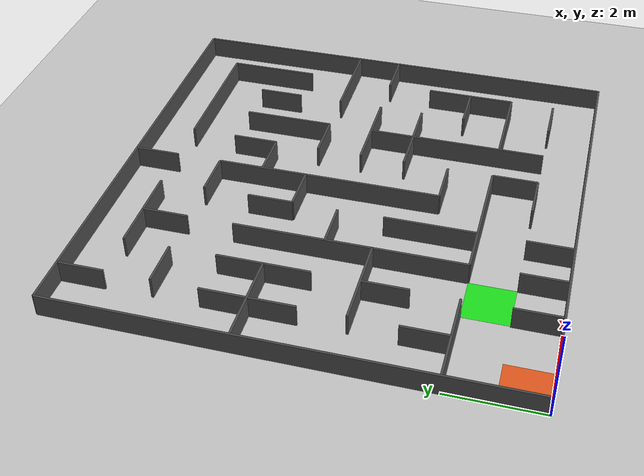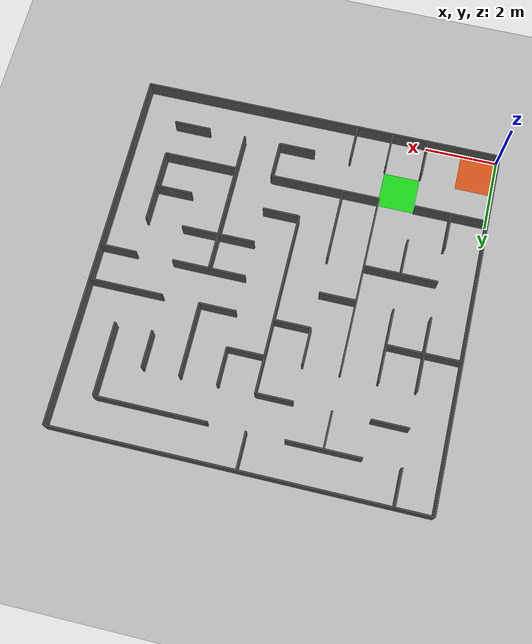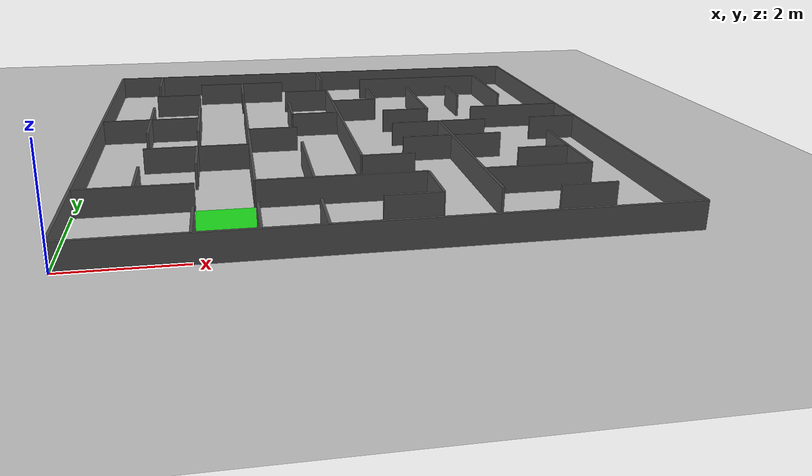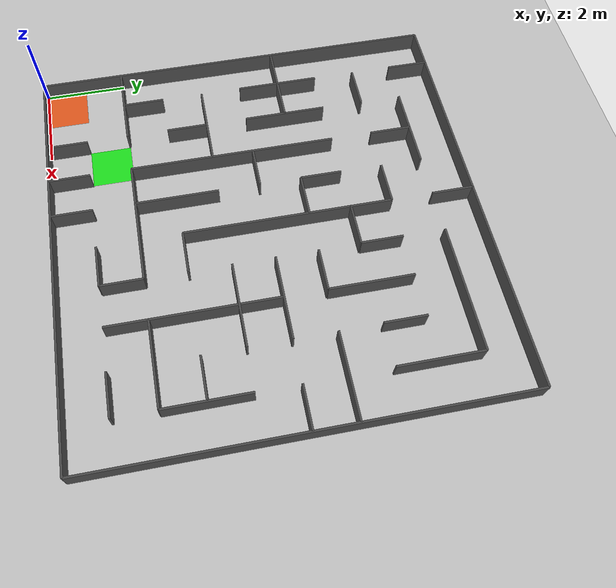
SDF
<sdf version="1.7">
 <world name="default">
  <light name="sun" type="directional">
   <pose>0 0 10 0 -0 0</pose>
   <diffuse>0.8 0.8 0.8 1</diffuse>
   <specular>0.2 0.2 0.2 1</specular>
   <attenuation>
    <range>1000</range>
    <constant>0.9</constant>
    <linear>0.01</linear>
    <quadratic>0.001</quadratic>
   </attenuation>
   <direction>-0.5 0.1 -0.9</direction>
   <spot><inner_angle>0</inner_angle><outer_angle>0</outer_angle><falloff>0</falloff></spot>
  </light>
  <model name="ground_plane">
   <static>1</static>
   <link name="link">
    <collision name="collision">
     <geometry><plane><normal>0 0 1</normal><size>100 100</size></plane></geometry>
     <surface>
      <contact><collide_bitmask>65535</collide_bitmask></contact>
      <friction><ode><mu>100</mu><mu2>50</mu2></ode></friction>
     </surface>
    </collision>
    <visual name="visual">
     <geometry><plane><normal>0 0 1</normal><size>100 100</size></plane></geometry>
     <material>
      <script><uri>file://media/materials/scripts/gazebo.material</uri><name>Gazebo/Grey</name></script>
     </material>
    </visual>
   </link>
  </model>
  <gravity>0 0 -9.8</gravity>
  <magnetic_field>6e-06 2.3e-05 -4.2e-05</magnetic_field>
  <atmosphere type="adiabatic"/>
  <physics type="ode">
   <max_step_size>0.001</max_step_size>
   <real_time_factor>1</real_time_factor>
   <real_time_update_rate>1000</real_time_update_rate>
  </physics>
  <scene><ambient>0.4 0.4 0.4 1</ambient><background>0.7 0.7 0.7 1</background><shadows>1</shadows></scene>
  <spherical_coordinates>
   <surface_model>EARTH_WGS84</surface_model>
   <latitude_deg>0</latitude_deg>
   <longitude_deg>0</longitude_deg>
   <elevation>0</elevation>
   <heading_deg>0</heading_deg>
  </spherical_coordinates>
  <model name="begin_square">
   <link name="link">
    <inertial>
     <mass>0.00384767</mass>
     <inertia>
      <ixx>0.000320644</ixx>
      <ixy>0</ixy>
      <ixz>0</ixz>
      <iyy>0.000320644</iyy>
      <iyz>0</iyz>
      <izz>0.000641278</izz>
     </inertia>
    </inertial>
    <visual name="visual">
     <geometry><box><size>1 1 0.001</size></box></geometry>
     <material>
      <ambient>1 0.3 0 0.8</ambient>
      <diffuse>1 0.3 0 0.8</diffuse>
      <specular>0 0 0 0</specular>
      <emissive>1 0.3 0 1</emissive>
     </material>
    </visual>
    <collision name="collision"><geometry><box><size>0 0 0</size></box></geometry></collision>
   </link>
   <static>1</static>
   <pose>0.5 0.5 0.001 0 -0 0</pose>
  </model>
  <model name="end_square">
   <link name="link">
    <inertial>
     <mass>0.00384767</mass>
     <inertia>
      <ixx>0.000320644</ixx>
      <ixy>0</ixy>
      <ixz>0</ixz>
      <iyy>0.000320644</iyy>
      <iyz>0</iyz>
      <izz>0.000641278</izz>
     </inertia>
    </inertial>
    <visual name="visual">
     <geometry><box><size>1 1 0.001</size></box></geometry>
     <material>
      <ambient>0 1 0 0.8</ambient>
      <diffuse>0 1 0 0.8</diffuse>
      <specular>0 0 0 0</specular>
      <emissive>0 1 0 1</emissive>
     </material>
    </visual>
    <collision name="collision"><geometry><box><size>0 0 0</size></box></geometry></collision>
   </link>
   <static>1</static>
   <pose>2.5 1.5 0.001 0 -0 0</pose>
  </model>
  <model name="maze_wall_10_5_0">
   <link name="link">
    <inertial>
     <mass>1</mass>
     <inertia>
      <ixx>0.166667</ixx>
      <ixy>0</ixy>
      <ixz>0</ixz>
      <iyy>0.166667</iyy>
      <iyz>0</iyz>
      <izz>0.166667</izz>
     </inertia>
    </inertial>
    <pose>0 0 0.25 0 -0 0</pose>
    <visual name="visual">
     <geometry><box><size>10 0.05 0.5</size></box></geometry>
     <material>
      <script><uri>file://media/materials/scripts/gazebo.material</uri><name>Gazebo/DarkGrey</name></script>
     </material>
    </visual>
    <collision name="collision"><geometry><box><size>10 0.05 0.5</size></box></geometry></collision>
   </link>
   <static>1</static>
   <pose>5 0 0 0 -0 0</pose>
  </model>
  <model name="maze_wall_10_0_5_h">
   <link name="link">
    <inertial>
     <mass>1</mass>
     <inertia>
      <ixx>0.166667</ixx>
      <ixy>0</ixy>
      <ixz>0</ixz>
      <iyy>0.166667</iyy>
      <iyz>0</iyz>
      <izz>0.166667</izz>
     </inertia>
    </inertial>
    <pose>0 0 0.25 0 -0 0</pose>
    <visual name="visual">
     <geometry><box><size>10 0.05 0.5</size></box></geometry>
     <material>
      <script><uri>file://media/materials/scripts/gazebo.material</uri><name>Gazebo/DarkGrey</name></script>
     </material>
    </visual>
    <collision name="collision"><geometry><box><size>10 0.05 0.5</size></box></geometry></collision>
   </link>
   <static>1</static>
   <pose>0 5 0 0 -0 1.57</pose>
  </model>
  <model name="maze_wall_10_5_10">
   <link name="link">
    <inertial>
     <mass>1</mass>
     <inertia>
      <ixx>0.166667</ixx>
      <ixy>0</ixy>
      <ixz>0</ixz>
      <iyy>0.166667</iyy>
      <iyz>0</iyz>
      <izz>0.166667</izz>
     </inertia>
    </inertial>
    <pose>0 0 0.25 0 -0 0</pose>
    <visual name="visual">
     <geometry><box><size>10 0.05 0.5</size></box></geometry>
     <material>
      <script><uri>file://media/materials/scripts/gazebo.material</uri><name>Gazebo/DarkGrey</name></script>
     </material>
    </visual>
    <collision name="collision"><geometry><box><size>10 0.05 0.5</size></box></geometry></collision>
   </link>
   <static>1</static>
   <pose>5 10 0 0 -0 0</pose>
  </model>
  <model name="maze_wall_10_10_5_h">
   <link name="link">
    <inertial>
     <mass>1</mass>
     <inertia>
      <ixx>0.166667</ixx>
      <ixy>0</ixy>
      <ixz>0</ixz>
      <iyy>0.166667</iyy>
      <iyz>0</iyz>
      <izz>0.166667</izz>
     </inertia>
    </inertial>
    <pose>0 0 0.25 0 -0 0</pose>
    <visual name="visual">
     <geometry><box><size>10 0.05 0.5</size></box></geometry>
     <material>
      <script><uri>file://media/materials/scripts/gazebo.material</uri><name>Gazebo/DarkGrey</name></script>
     </material>
    </visual>
    <collision name="collision"><geometry><box><size>10 0.05 0.5</size></box></geometry></collision>
   </link>
   <static>1</static>
   <pose>10 5 0 0 -0 1.57</pose>
  </model>
  <model name="maze_wall_2_1_2">
   <link name="link">
    <inertial>
     <mass>1</mass>
     <inertia>
      <ixx>0.166667</ixx>
      <ixy>0</ixy>
      <ixz>0</ixz>
      <iyy>0.166667</iyy>
      <iyz>0</iyz>
      <izz>0.166667</izz>
     </inertia>
    </inertial>
    <pose>0 0 0.25 0 -0 0</pose>
    <visual name="visual">
     <geometry><box><size>2 0.05 0.5</size></box></geometry>
     <material>
      <script><uri>file://media/materials/scripts/gazebo.material</uri><name>Gazebo/DarkGrey</name></script>
     </material>
    </visual>
    <collision name="collision"><geometry><box><size>2 0.05 0.5</size></box></geometry></collision>
   </link>
   <static>1</static>
   <pose>1 2 0 0 -0 0</pose>
  </model>
  <model name="maze_wall_4_5_5,5_h">
   <link name="link">
    <inertial>
     <mass>1</mass>
     <inertia>
      <ixx>0.166667</ixx>
      <ixy>0</ixy>
      <ixz>0</ixz>
      <iyy>0.166667</iyy>
      <iyz>0</iyz>
      <izz>0.166667</izz>
     </inertia>
    </inertial>
    <pose>0 0 0.25 0 -0 0</pose>
    <visual name="visual">
     <geometry><box><size>5 0.05 0.5</size></box></geometry>
     <material>
      <script><uri>file://media/materials/scripts/gazebo.material</uri><name>Gazebo/DarkGrey</name></script>
     </material>
    </visual>
    <collision name="collision"><geometry><box><size>5 0.05 0.5</size></box></geometry></collision>
   </link>
   <static>1</static>
   <pose>5 5.5 0 0 -0 1.57</pose>
  </model>
  <model name="maze_wall_1_4,5_6">
   <link name="link">
    <inertial>
     <mass>1</mass>
     <inertia>
      <ixx>0.166667</ixx>
      <ixy>0</ixy>
      <ixz>0</ixz>
      <iyy>0.166667</iyy>
      <iyz>0</iyz>
      <izz>0.166667</izz>
     </inertia>
    </inertial>
    <pose>0 0 0.25 0 -0 0</pose>
    <visual name="visual">
     <geometry><box><size>1 0.05 0.5</size></box></geometry>
     <material>
      <script><uri>file://media/materials/scripts/gazebo.material</uri><name>Gazebo/DarkGrey</name></script>
     </material>
    </visual>
    <collision name="collision"><geometry><box><size>1 0.05 0.5</size></box></geometry></collision>
   </link>
   <static>1</static>
   <pose>4.5 6 0 0 -0 0</pose>
  </model>
  <model name="maze_wall_4_3_4,5_h">
   <link name="link">
    <inertial>
     <mass>1</mass>
     <inertia>
      <ixx>0.166667</ixx>
      <ixy>0</ixy>
      <ixz>0</ixz>
      <iyy>0.166667</iyy>
      <iyz>0</iyz>
      <izz>0.166667</izz>
     </inertia>
    </inertial>
    <pose>0 0 0.25 0 -0 0</pose>
    <visual name="visual">
     <geometry><box><size>5 0.05 0.5</size></box></geometry>
     <material>
      <script><uri>file://media/materials/scripts/gazebo.material</uri><name>Gazebo/DarkGrey</name></script>
     </material>
    </visual>
    <collision name="collision"><geometry><box><size>5 0.05 0.5</size></box></geometry></collision>
   </link>
   <static>1</static>
   <pose>3 4.5 0 0 -0 1.57</pose>
  </model>
  <model name="maze_wall_1_4,5_8">
   <link name="link">
    <inertial>
     <mass>1</mass>
     <inertia>
      <ixx>0.166667</ixx>
      <ixy>0</ixy>
      <ixz>0</ixz>
      <iyy>0.166667</iyy>
      <iyz>0</iyz>
      <izz>0.166667</izz>
     </inertia>
    </inertial>
    <pose>0 0 0.25 0 -0 0</pose>
    <visual name="visual">
     <geometry><box><size>1 0.05 0.5</size></box></geometry>
     <material>
      <script><uri>file://media/materials/scripts/gazebo.material</uri><name>Gazebo/DarkGrey</name></script>
     </material>
    </visual>
    <collision name="collision"><geometry><box><size>1 0.05 0.5</size></box></geometry></collision>
   </link>
   <static>1</static>
   <pose>4.5 8 0 0 -0 0</pose>
  </model>
  <model name="maze_wall_1_3,5_5">
   <link name="link">
    <inertial>
     <mass>1</mass>
     <inertia>
      <ixx>0.166667</ixx>
      <ixy>0</ixy>
      <ixz>0</ixz>
      <iyy>0.166667</iyy>
      <iyz>0</iyz>
      <izz>0.166667</izz>
     </inertia>
    </inertial>
    <pose>0 0 0.25 0 -0 0</pose>
    <visual name="visual">
     <geometry><box><size>1 0.05 0.5</size></box></geometry>
     <material>
      <script><uri>file://media/materials/scripts/gazebo.material</uri><name>Gazebo/DarkGrey</name></script>
     </material>
    </visual>
    <collision name="collision"><geometry><box><size>1 0.05 0.5</size></box></geometry></collision>
   </link>
   <static>1</static>
   <pose>3.5 5 0 0 -0 0</pose>
  </model>
  <model name="maze_wall_2_2_4">
   <link name="link">
    <inertial>
     <mass>1</mass>
     <inertia>
      <ixx>0.166667</ixx>
      <ixy>0</ixy>
      <ixz>0</ixz>
      <iyy>0.166667</iyy>
      <iyz>0</iyz>
      <izz>0.166667</izz>
     </inertia>
    </inertial>
    <pose>0 0 0.25 0 -0 0</pose>
    <visual name="visual">
     <geometry><box><size>2 0.05 0.5</size></box></geometry>
     <material>
      <script><uri>file://media/materials/scripts/gazebo.material</uri><name>Gazebo/DarkGrey</name></script>
     </material>
    </visual>
    <collision name="collision"><geometry><box><size>2 0.05 0.5</size></box></geometry></collision>
   </link>
   <static>1</static>
   <pose>2 4 0 0 -0 0</pose>
  </model>
  <model name="maze_wall_3_4,5_2">
   <link name="link">
    <inertial>
     <mass>1</mass>
     <inertia>
      <ixx>0.166667</ixx>
      <ixy>0</ixy>
      <ixz>0</ixz>
      <iyy>0.166667</iyy>
      <iyz>0</iyz>
      <izz>0.166667</izz>
     </inertia>
    </inertial>
    <pose>0 0 0.25 0 -0 0</pose>
    <visual name="visual">
     <geometry><box><size>3 0.05 0.5</size></box></geometry>
     <material>
      <script><uri>file://media/materials/scripts/gazebo.material</uri><name>Gazebo/DarkGrey</name></script>
     </material>
    </visual>
    <collision name="collision"><geometry><box><size>3 0.05 0.5</size></box></geometry></collision>
   </link>
   <static>1</static>
   <pose>4.5 2 0 0 -0 0</pose>
  </model>
  <model name="maze_wall_3_7,5_9">
   <link name="link">
    <inertial>
     <mass>1</mass>
     <inertia>
      <ixx>0.166667</ixx>
      <ixy>0</ixy>
      <ixz>0</ixz>
      <iyy>0.166667</iyy>
      <iyz>0</iyz>
      <izz>0.166667</izz>
     </inertia>
    </inertial>
    <pose>0 0 0.25 0 -0 0</pose>
    <visual name="visual">
     <geometry><box><size>3 0.05 0.5</size></box></geometry>
     <material>
      <script><uri>file://media/materials/scripts/gazebo.material</uri><name>Gazebo/DarkGrey</name></script>
     </material>
    </visual>
    <collision name="collision"><geometry><box><size>3 0.05 0.5</size></box></geometry></collision>
   </link>
   <static>1</static>
   <pose>7.5 9 0 0 -0 0</pose>
  </model>
  <model name="maze_wall_2_9_8_h">
   <link name="link">
    <inertial>
     <mass>1</mass>
     <inertia>
      <ixx>0.166667</ixx>
      <ixy>0</ixy>
      <ixz>0</ixz>
      <iyy>0.166667</iyy>
      <iyz>0</iyz>
      <izz>0.166667</izz>
     </inertia>
    </inertial>
    <pose>0 0 0.25 0 -0 0</pose>
    <visual name="visual">
     <geometry><box><size>2 0.05 0.5</size></box></geometry>
     <material>
      <script><uri>file://media/materials/scripts/gazebo.material</uri><name>Gazebo/DarkGrey</name></script>
     </material>
    </visual>
    <collision name="collision"><geometry><box><size>2 0.05 0.5</size></box></geometry></collision>
   </link>
   <static>1</static>
   <pose>9 8 0 0 -0 1.57</pose>
  </model>
  <model name="maze_wall_2_4_3_h">
   <link name="link">
    <inertial>
     <mass>1</mass>
     <inertia>
      <ixx>0.166667</ixx>
      <ixy>0</ixy>
      <ixz>0</ixz>
      <iyy>0.166667</iyy>
      <iyz>0</iyz>
      <izz>0.166667</izz>
     </inertia>
    </inertial>
    <pose>0 0 0.25 0 -0 0</pose>
    <visual name="visual">
     <geometry><box><size>2 0.05 0.5</size></box></geometry>
     <material>
      <script><uri>file://media/materials/scripts/gazebo.material</uri><name>Gazebo/DarkGrey</name></script>
     </material>
    </visual>
    <collision name="collision"><geometry><box><size>2 0.05 0.5</size></box></geometry></collision>
   </link>
   <static>1</static>
   <pose>4 3 0 0 -0 1.57</pose>
  </model>
  <model name="maze_wall_2_2_6_h">
   <link name="link">
    <inertial>
     <mass>1</mass>
     <inertia>
      <ixx>0.166667</ixx>
      <ixy>0</ixy>
      <ixz>0</ixz>
      <iyy>0.166667</iyy>
      <iyz>0</iyz>
      <izz>0.166667</izz>
     </inertia>
    </inertial>
    <pose>0 0 0.25 0 -0 0</pose>
    <visual name="visual">
     <geometry><box><size>2 0.05 0.5</size></box></geometry>
     <material>
      <script><uri>file://media/materials/scripts/gazebo.material</uri><name>Gazebo/DarkGrey</name></script>
     </material>
    </visual>
    <collision name="collision"><geometry><box><size>2 0.05 0.5</size></box></geometry></collision>
   </link>
   <static>1</static>
   <pose>2 6 0 0 -0 1.57</pose>
  </model>
  <model name="maze_wall_2_7_7_h">
   <link name="link">
    <inertial>
     <mass>1</mass>
     <inertia>
      <ixx>0.166667</ixx>
      <ixy>0</ixy>
      <ixz>0</ixz>
      <iyy>0.166667</iyy>
      <iyz>0</iyz>
      <izz>0.166667</izz>
     </inertia>
    </inertial>
    <pose>0 0 0.25 0 -0 0</pose>
    <visual name="visual">
     <geometry><box><size>2 0.05 0.5</size></box></geometry>
     <material>
      <script><uri>file://media/materials/scripts/gazebo.material</uri><name>Gazebo/DarkGrey</name></script>
     </material>
    </visual>
    <collision name="collision"><geometry><box><size>2 0.05 0.5</size></box></geometry></collision>
   </link>
   <static>1</static>
   <pose>7 7 0 0 -0 1.57</pose>
  </model>
  <model name="maze_wall_1_6,5_6">
   <link name="link">
    <inertial>
     <mass>1</mass>
     <inertia>
      <ixx>0.166667</ixx>
      <ixy>0</ixy>
      <ixz>0</ixz>
      <iyy>0.166667</iyy>
      <iyz>0</iyz>
      <izz>0.166667</izz>
     </inertia>
    </inertial>
    <pose>0 0 0.25 0 -0 0</pose>
    <visual name="visual">
     <geometry><box><size>1 0.05 0.5</size></box></geometry>
     <material>
      <script><uri>file://media/materials/scripts/gazebo.material</uri><name>Gazebo/DarkGrey</name></script>
     </material>
    </visual>
    <collision name="collision"><geometry><box><size>1 0.05 0.5</size></box></geometry></collision>
   </link>
   <static>1</static>
   <pose>6.5 6 0 0 -0 0</pose>
  </model>
  <model name="maze_wall_1_5,5_3">
   <link name="link">
    <inertial>
     <mass>1</mass>
     <inertia>
      <ixx>0.166667</ixx>
      <ixy>0</ixy>
      <ixz>0</ixz>
      <iyy>0.166667</iyy>
      <iyz>0</iyz>
      <izz>0.166667</izz>
     </inertia>
    </inertial>
    <pose>0 0 0.25 0 -0 0</pose>
    <visual name="visual">
     <geometry><box><size>1 0.05 0.5</size></box></geometry>
     <material>
      <script><uri>file://media/materials/scripts/gazebo.material</uri><name>Gazebo/DarkGrey</name></script>
     </material>
    </visual>
    <collision name="collision"><geometry><box><size>1 0.05 0.5</size></box></geometry></collision>
   </link>
   <static>1</static>
   <pose>5.5 3 0 0 -0 0</pose>
  </model>
  <model name="maze_wall_1_2_0,5_h">
   <link name="link">
    <inertial>
     <mass>1</mass>
     <inertia>
      <ixx>0.166667</ixx>
      <ixy>0</ixy>
      <ixz>0</ixz>
      <iyy>0.166667</iyy>
      <iyz>0</iyz>
      <izz>0.166667</izz>
     </inertia>
    </inertial>
    <pose>0 0 0.25 0 -0 0</pose>
    <visual name="visual">
     <geometry><box><size>1 0.05 0.5</size></box></geometry>
     <material>
      <script><uri>file://media/materials/scripts/gazebo.material</uri><name>Gazebo/DarkGrey</name></script>
     </material>
    </visual>
    <collision name="collision"><geometry><box><size>1 0.05 0.5</size></box></geometry></collision>
   </link>
   <static>1</static>
   <pose>2 0.5 0 0 -0 1.57</pose>
  </model>
  <model name="maze_wall_1_4_0,5_h">
   <link name="link">
    <inertial>
     <mass>1</mass>
     <inertia>
      <ixx>0.166667</ixx>
      <ixy>0</ixy>
      <ixz>0</ixz>
      <iyy>0.166667</iyy>
      <iyz>0</iyz>
      <izz>0.166667</izz>
     </inertia>
    </inertial>
    <pose>0 0 0.25 0 -0 0</pose>
    <visual name="visual">
     <geometry><box><size>1 0.05 0.5</size></box></geometry>
     <material>
      <script><uri>file://media/materials/scripts/gazebo.material</uri><name>Gazebo/DarkGrey</name></script>
     </material>
    </visual>
    <collision name="collision"><geometry><box><size>1 0.05 0.5</size></box></geometry></collision>
   </link>
   <static>1</static>
   <pose>4 0.5 0 0 -0 1.57</pose>
  </model>
  <model name="maze_wall_1_8_7,5_h">
   <link name="link">
    <inertial>
     <mass>1</mass>
     <inertia>
      <ixx>0.166667</ixx>
      <ixy>0</ixy>
      <ixz>0</ixz>
      <iyy>0.166667</iyy>
      <iyz>0</iyz>
      <izz>0.166667</izz>
     </inertia>
    </inertial>
    <pose>0 0 0.25 0 -0 0</pose>
    <visual name="visual">
     <geometry><box><size>1 0.05 0.5</size></box></geometry>
     <material>
      <script><uri>file://media/materials/scripts/gazebo.material</uri><name>Gazebo/DarkGrey</name></script>
     </material>
    </visual>
    <collision name="collision"><geometry><box><size>1 0.05 0.5</size></box></geometry></collision>
   </link>
   <static>1</static>
   <pose>8 7.5 0 0 -0 1.57</pose>
  </model>
  <model name="maze_wall_2_7_5">
   <link name="link">
    <inertial>
     <mass>1</mass>
     <inertia>
      <ixx>0.166667</ixx>
      <ixy>0</ixy>
      <ixz>0</ixz>
      <iyy>0.166667</iyy>
      <iyz>0</iyz>
      <izz>0.166667</izz>
     </inertia>
    </inertial>
    <pose>0 0 0.25 0 -0 0</pose>
    <visual name="visual">
     <geometry><box><size>2 0.05 0.5</size></box></geometry>
     <material>
      <script><uri>file://media/materials/scripts/gazebo.material</uri><name>Gazebo/DarkGrey</name></script>
     </material>
    </visual>
    <collision name="collision"><geometry><box><size>2 0.05 0.5</size></box></geometry></collision>
   </link>
   <static>1</static>
   <pose>7 5 0 0 -0 0</pose>
  </model>
  <model name="maze_wall_1_1,5_8">
   <link name="link">
    <inertial>
     <mass>1</mass>
     <inertia>
      <ixx>0.166667</ixx>
      <ixy>0</ixy>
      <ixz>0</ixz>
      <iyy>0.166667</iyy>
      <iyz>0</iyz>
      <izz>0.166667</izz>
     </inertia>
    </inertial>
    <pose>0 0 0.25 0 -0 0</pose>
    <visual name="visual">
     <geometry><box><size>1 0.05 0.5</size></box></geometry>
     <material>
      <script><uri>file://media/materials/scripts/gazebo.material</uri><name>Gazebo/DarkGrey</name></script>
     </material>
    </visual>
    <collision name="collision"><geometry><box><size>1 0.05 0.5</size></box></geometry></collision>
   </link>
   <static>1</static>
   <pose>1.5 8 0 0 -0 0</pose>
  </model>
  <model name="maze_wall_2_3_9">
   <link name="link">
    <inertial>
     <mass>1</mass>
     <inertia>
      <ixx>0.166667</ixx>
      <ixy>0</ixy>
      <ixz>0</ixz>
      <iyy>0.166667</iyy>
      <iyz>0</iyz>
      <izz>0.166667</izz>
     </inertia>
    </inertial>
    <pose>0 0 0.25 0 -0 0</pose>
    <visual name="visual">
     <geometry><box><size>2 0.05 0.5</size></box></geometry>
     <material>
      <script><uri>file://media/materials/scripts/gazebo.material</uri><name>Gazebo/DarkGrey</name></script>
     </material>
    </visual>
    <collision name="collision"><geometry><box><size>2 0.05 0.5</size></box></geometry></collision>
   </link>
   <static>1</static>
   <pose>3 9 0 0 -0 0</pose>
  </model>
  <model name="maze_wall_1_5_9,5_h">
   <link name="link">
    <inertial>
     <mass>1</mass>
     <inertia>
      <ixx>0.166667</ixx>
      <ixy>0</ixy>
      <ixz>0</ixz>
      <iyy>0.166667</iyy>
      <iyz>0</iyz>
      <izz>0.166667</izz>
     </inertia>
    </inertial>
    <pose>0 0 0.25 0 -0 0</pose>
    <visual name="visual">
     <geometry><box><size>1 0.05 0.5</size></box></geometry>
     <material>
      <script><uri>file://media/materials/scripts/gazebo.material</uri><name>Gazebo/DarkGrey</name></script>
     </material>
    </visual>
    <collision name="collision"><geometry><box><size>1 0.05 0.5</size></box></geometry></collision>
   </link>
   <static>1</static>
   <pose>5 9.5 0 0 -0 1.57</pose>
  </model>
  <model name="maze_wall_1_3_8,5_h">
   <link name="link">
    <inertial>
     <mass>1</mass>
     <inertia>
      <ixx>0.166667</ixx>
      <ixy>0</ixy>
      <ixz>0</ixz>
      <iyy>0.166667</iyy>
      <iyz>0</iyz>
      <izz>0.166667</izz>
     </inertia>
    </inertial>
    <pose>0 0 0.25 0 -0 0</pose>
    <visual name="visual">
     <geometry><box><size>1 0.05 0.5</size></box></geometry>
     <material>
      <script><uri>file://media/materials/scripts/gazebo.material</uri><name>Gazebo/DarkGrey</name></script>
     </material>
    </visual>
    <collision name="collision"><geometry><box><size>1 0.05 0.5</size></box></geometry></collision>
   </link>
   <static>1</static>
   <pose>3 8.5 0 0 -0 1.57</pose>
  </model>
  <model name="maze_wall_1_1_9,5_h">
   <link name="link">
    <inertial>
     <mass>1</mass>
     <inertia>
      <ixx>0.166667</ixx>
      <ixy>0</ixy>
      <ixz>0</ixz>
      <iyy>0.166667</iyy>
      <iyz>0</iyz>
      <izz>0.166667</izz>
     </inertia>
    </inertial>
    <pose>0 0 0.25 0 -0 0</pose>
    <visual name="visual">
     <geometry><box><size>1 0.05 0.5</size></box></geometry>
     <material>
      <script><uri>file://media/materials/scripts/gazebo.material</uri><name>Gazebo/DarkGrey</name></script>
     </material>
    </visual>
    <collision name="collision"><geometry><box><size>1 0.05 0.5</size></box></geometry></collision>
   </link>
   <static>1</static>
   <pose>1 9.5 0 0 -0 1.57</pose>
  </model>
  <model name="maze_wall_2_7_4">
   <link name="link">
    <inertial>
     <mass>1</mass>
     <inertia>
      <ixx>0.166667</ixx>
      <ixy>0</ixy>
      <ixz>0</ixz>
      <iyy>0.166667</iyy>
      <iyz>0</iyz>
      <izz>0.166667</izz>
     </inertia>
    </inertial>
    <pose>0 0 0.25 0 -0 0</pose>
    <visual name="visual">
     <geometry><box><size>2 0.05 0.5</size></box></geometry>
     <material>
      <script><uri>file://media/materials/scripts/gazebo.material</uri><name>Gazebo/DarkGrey</name></script>
     </material>
    </visual>
    <collision name="collision"><geometry><box><size>2 0.05 0.5</size></box></geometry></collision>
   </link>
   <static>1</static>
   <pose>7 4 0 0 -0 0</pose>
  </model>
  <model name="maze_wall_1_6_1,5_h">
   <link name="link">
    <inertial>
     <mass>1</mass>
     <inertia>
      <ixx>0.166667</ixx>
      <ixy>0</ixy>
      <ixz>0</ixz>
      <iyy>0.166667</iyy>
      <iyz>0</iyz>
      <izz>0.166667</izz>
     </inertia>
    </inertial>
    <pose>0 0 0.25 0 -0 0</pose>
    <visual name="visual">
     <geometry><box><size>1 0.05 0.5</size></box></geometry>
     <material>
      <script><uri>file://media/materials/scripts/gazebo.material</uri><name>Gazebo/DarkGrey</name></script>
     </material>
    </visual>
    <collision name="collision"><geometry><box><size>1 0.05 0.5</size></box></geometry></collision>
   </link>
   <static>1</static>
   <pose>6 1.5 0 0 -0 1.57</pose>
  </model>
  <model name="maze_wall_1_5,5_1">
   <link name="link">
    <inertial>
     <mass>1</mass>
     <inertia>
      <ixx>0.166667</ixx>
      <ixy>0</ixy>
      <ixz>0</ixz>
      <iyy>0.166667</iyy>
      <iyz>0</iyz>
      <izz>0.166667</izz>
     </inertia>
    </inertial>
    <pose>0 0 0.25 0 -0 0</pose>
    <visual name="visual">
     <geometry><box><size>1 0.05 0.5</size></box></geometry>
     <material>
      <script><uri>file://media/materials/scripts/gazebo.material</uri><name>Gazebo/DarkGrey</name></script>
     </material>
    </visual>
    <collision name="collision"><geometry><box><size>1 0.05 0.5</size></box></geometry></collision>
   </link>
   <static>1</static>
   <pose>5.5 1 0 0 -0 0</pose>
  </model>
  <model name="maze_wall_2_1_6">
   <link name="link">
    <inertial>
     <mass>1</mass>
     <inertia>
      <ixx>0.166667</ixx>
      <ixy>0</ixy>
      <ixz>0</ixz>
      <iyy>0.166667</iyy>
      <iyz>0</iyz>
      <izz>0.166667</izz>
     </inertia>
    </inertial>
    <pose>0 0 0.25 0 -0 0</pose>
    <visual name="visual">
     <geometry><box><size>2 0.05 0.5</size></box></geometry>
     <material>
      <script><uri>file://media/materials/scripts/gazebo.material</uri><name>Gazebo/DarkGrey</name></script>
     </material>
    </visual>
    <collision name="collision"><geometry><box><size>2 0.05 0.5</size></box></geometry></collision>
   </link>
   <static>1</static>
   <pose>1 6 0 0 -0 0</pose>
  </model>
  <model name="maze_wall_1_1_2,5_h">
   <link name="link">
    <inertial>
     <mass>1</mass>
     <inertia>
      <ixx>0.166667</ixx>
      <ixy>0</ixy>
      <ixz>0</ixz>
      <iyy>0.166667</iyy>
      <iyz>0</iyz>
      <izz>0.166667</izz>
     </inertia>
    </inertial>
    <pose>0 0 0.25 0 -0 0</pose>
    <visual name="visual">
     <geometry><box><size>1 0.05 0.5</size></box></geometry>
     <material>
      <script><uri>file://media/materials/scripts/gazebo.material</uri><name>Gazebo/DarkGrey</name></script>
     </material>
    </visual>
    <collision name="collision"><geometry><box><size>1 0.05 0.5</size></box></geometry></collision>
   </link>
   <static>1</static>
   <pose>1 2.5 0 0 -0 1.57</pose>
  </model>
  <model name="maze_wall_1_2_3,5_h">
   <link name="link">
    <inertial>
     <mass>1</mass>
     <inertia>
      <ixx>0.166667</ixx>
      <ixy>0</ixy>
      <ixz>0</ixz>
      <iyy>0.166667</iyy>
      <iyz>0</iyz>
      <izz>0.166667</izz>
     </inertia>
    </inertial>
    <pose>0 0 0.25 0 -0 0</pose>
    <visual name="visual">
     <geometry><box><size>1 0.05 0.5</size></box></geometry>
     <material>
      <script><uri>file://media/materials/scripts/gazebo.material</uri><name>Gazebo/DarkGrey</name></script>
     </material>
    </visual>
    <collision name="collision"><geometry><box><size>1 0.05 0.5</size></box></geometry></collision>
   </link>
   <static>1</static>
   <pose>2 3.5 0 0 -0 1.57</pose>
  </model>
  <model name="maze_wall_1_5,5_7">
   <link name="link">
    <inertial>
     <mass>1</mass>
     <inertia>
      <ixx>0.166667</ixx>
      <ixy>0</ixy>
      <ixz>0</ixz>
      <iyy>0.166667</iyy>
      <iyz>0</iyz>
      <izz>0.166667</izz>
     </inertia>
    </inertial>
    <pose>0 0 0.25 0 -0 0</pose>
    <visual name="visual">
     <geometry><box><size>1 0.05 0.5</size></box></geometry>
     <material>
      <script><uri>file://media/materials/scripts/gazebo.material</uri><name>Gazebo/DarkGrey</name></script>
     </material>
    </visual>
    <collision name="collision"><geometry><box><size>1 0.05 0.5</size></box></geometry></collision>
   </link>
   <static>1</static>
   <pose>5.5 7 0 0 -0 0</pose>
  </model>
  <model name="maze_wall_1_6_7,5_h">
   <link name="link">
    <inertial>
     <mass>1</mass>
     <inertia>
      <ixx>0.166667</ixx>
      <ixy>0</ixy>
      <ixz>0</ixz>
      <iyy>0.166667</iyy>
      <iyz>0</iyz>
      <izz>0.166667</izz>
     </inertia>
    </inertial>
    <pose>0 0 0.25 0 -0 0</pose>
    <visual name="visual">
     <geometry><box><size>1 0.05 0.5</size></box></geometry>
     <material>
      <script><uri>file://media/materials/scripts/gazebo.material</uri><name>Gazebo/DarkGrey</name></script>
     </material>
    </visual>
    <collision name="collision"><geometry><box><size>1 0.05 0.5</size></box></geometry></collision>
   </link>
   <static>1</static>
   <pose>6 7.5 0 0 -0 1.57</pose>
  </model>
  <model name="maze_wall_1_4_6,5_h">
   <link name="link">
    <inertial>
     <mass>1</mass>
     <inertia>
      <ixx>0.166667</ixx>
      <ixy>0</ixy>
      <ixz>0</ixz>
      <iyy>0.166667</iyy>
      <iyz>0</iyz>
      <izz>0.166667</izz>
     </inertia>
    </inertial>
    <pose>0 0 0.25 0 -0 0</pose>
    <visual name="visual">
     <geometry><box><size>1 0.05 0.5</size></box></geometry>
     <material>
      <script><uri>file://media/materials/scripts/gazebo.material</uri><name>Gazebo/DarkGrey</name></script>
     </material>
    </visual>
    <collision name="collision"><geometry><box><size>1 0.05 0.5</size></box></geometry></collision>
   </link>
   <static>1</static>
   <pose>4 6.5 0 0 -0 1.57</pose>
  </model>
  <model name="maze_wall_2_1_6_h">
   <link name="link">
    <inertial>
     <mass>1</mass>
     <inertia>
      <ixx>0.166667</ixx>
      <ixy>0</ixy>
      <ixz>0</ixz>
      <iyy>0.166667</iyy>
      <iyz>0</iyz>
      <izz>0.166667</izz>
     </inertia>
    </inertial>
    <pose>0 0 0.25 0 -0 0</pose>
    <visual name="visual">
     <geometry><box><size>2 0.05 0.5</size></box></geometry>
     <material>
      <script><uri>file://media/materials/scripts/gazebo.material</uri><name>Gazebo/DarkGrey</name></script>
     </material>
    </visual>
    <collision name="collision"><geometry><box><size>2 0.05 0.5</size></box></geometry></collision>
   </link>
   <static>1</static>
   <pose>1 6 0 0 -0 1.57</pose>
  </model>
  <model name="maze_wall_1_3_0,5_h">
   <link name="link">
    <inertial>
     <mass>1</mass>
     <inertia>
      <ixx>0.166667</ixx>
      <ixy>0</ixy>
      <ixz>0</ixz>
      <iyy>0.166667</iyy>
      <iyz>0</iyz>
      <izz>0.166667</izz>
     </inertia>
    </inertial>
    <pose>0 0 0.25 0 -0 0</pose>
    <visual name="visual">
     <geometry><box><size>1 0.05 0.5</size></box></geometry>
     <material>
      <script><uri>file://media/materials/scripts/gazebo.material</uri><name>Gazebo/DarkGrey</name></script>
     </material>
    </visual>
    <collision name="collision"><geometry><box><size>1 0.05 0.5</size></box></geometry></collision>
   </link>
   <static>1</static>
   <pose>3 0.5 0 0 -0 1.57</pose>
  </model>
  <model name="maze_wall_4_7_3_h">
   <link name="link">
    <inertial>
     <mass>1</mass>
     <inertia>
      <ixx>0.166667</ixx>
      <ixy>0</ixy>
      <ixz>0</ixz>
      <iyy>0.166667</iyy>
      <iyz>0</iyz>
      <izz>0.166667</izz>
     </inertia>
    </inertial>
    <pose>0 0 0.25 0 -0 0</pose>
    <visual name="visual">
     <geometry><box><size>4 0.05 0.5</size></box></geometry>
     <material>
      <script><uri>file://media/materials/scripts/gazebo.material</uri><name>Gazebo/DarkGrey</name></script>
     </material>
    </visual>
    <collision name="collision"><geometry><box><size>4 0.05 0.5</size></box></geometry></collision>
   </link>
   <static>1</static>
   <pose>7 3 0 0 -0 1.57</pose>
  </model>
  <model name="maze_wall_2_9_6">
   <link name="link">
    <inertial>
     <mass>1</mass>
     <inertia>
      <ixx>0.166667</ixx>
      <ixy>0</ixy>
      <ixz>0</ixz>
      <iyy>0.166667</iyy>
      <iyz>0</iyz>
      <izz>0.166667</izz>
     </inertia>
    </inertial>
    <pose>0 0 0.25 0 -0 0</pose>
    <visual name="visual">
     <geometry><box><size>2 0.05 0.5</size></box></geometry>
     <material>
      <script><uri>file://media/materials/scripts/gazebo.material</uri><name>Gazebo/DarkGrey</name></script>
     </material>
    </visual>
    <collision name="collision"><geometry><box><size>2 0.05 0.5</size></box></geometry></collision>
   </link>
   <static>1</static>
   <pose>9 6 0 0 -0 0</pose>
  </model>
  <model name="maze_wall_1_8,5_1">
   <link name="link">
    <inertial>
     <mass>1</mass>
     <inertia>
      <ixx>0.166667</ixx>
      <ixy>0</ixy>
      <ixz>0</ixz>
      <iyy>0.166667</iyy>
      <iyz>0</iyz>
      <izz>0.166667</izz>
     </inertia>
    </inertial>
    <pose>0 0 0.25 0 -0 0</pose>
    <visual name="visual">
     <geometry><box><size>1 0.05 0.5</size></box></geometry>
     <material>
      <script><uri>file://media/materials/scripts/gazebo.material</uri><name>Gazebo/DarkGrey</name></script>
     </material>
    </visual>
    <collision name="collision"><geometry><box><size>1 0.05 0.5</size></box></geometry></collision>
   </link>
   <static>1</static>
   <pose>8.5 1 0 0 -0 0</pose>
  </model>
  <model name="maze_wall_2_8_2">
   <link name="link">
    <inertial>
     <mass>1</mass>
     <inertia>
      <ixx>0.166667</ixx>
      <ixy>0</ixy>
      <ixz>0</ixz>
      <iyy>0.166667</iyy>
      <iyz>0</iyz>
      <izz>0.166667</izz>
     </inertia>
    </inertial>
    <pose>0 0 0.25 0 -0 0</pose>
    <visual name="visual">
     <geometry><box><size>2 0.05 0.5</size></box></geometry>
     <material>
      <script><uri>file://media/materials/scripts/gazebo.material</uri><name>Gazebo/DarkGrey</name></script>
     </material>
    </visual>
    <collision name="collision"><geometry><box><size>2 0.05 0.5</size></box></geometry></collision>
   </link>
   <static>1</static>
   <pose>8 2 0 0 -0 0</pose>
  </model>
  <model name="maze_wall_2_9_3_h">
   <link name="link">
    <inertial>
     <mass>1</mass>
     <inertia>
      <ixx>0.166667</ixx>
      <ixy>0</ixy>
      <ixz>0</ixz>
      <iyy>0.166667</iyy>
      <iyz>0</iyz>
      <izz>0.166667</izz>
     </inertia>
    </inertial>
    <pose>0 0 0.25 0 -0 0</pose>
    <visual name="visual">
     <geometry><box><size>2 0.05 0.5</size></box></geometry>
     <material>
      <script><uri>file://media/materials/scripts/gazebo.material</uri><name>Gazebo/DarkGrey</name></script>
     </material>
    </visual>
    <collision name="collision"><geometry><box><size>2 0.05 0.5</size></box></geometry></collision>
   </link>
   <static>1</static>
   <pose>9 3 0 0 -0 1.57</pose>
  </model>
  <model name="maze_wall_1_8,5_3">
   <link name="link">
    <inertial>
     <mass>1</mass>
     <inertia>
      <ixx>0.166667</ixx>
      <ixy>0</ixy>
      <ixz>0</ixz>
      <iyy>0.166667</iyy>
      <iyz>0</iyz>
      <izz>0.166667</izz>
     </inertia>
    </inertial>
    <pose>0 0 0.25 0 -0 0</pose>
    <visual name="visual">
     <geometry><box><size>1 0.05 0.5</size></box></geometry>
     <material>
      <script><uri>file://media/materials/scripts/gazebo.material</uri><name>Gazebo/DarkGrey</name></script>
     </material>
    </visual>
    <collision name="collision"><geometry><box><size>1 0.05 0.5</size></box></geometry></collision>
   </link>
   <static>1</static>
   <pose>8.5 3 0 0 -0 0</pose>
  </model>
  <model name="maze_wall_1_9,5_5">
   <link name="link">
    <inertial>
     <mass>1</mass>
     <inertia>
      <ixx>0.166667</ixx>
      <ixy>0</ixy>
      <ixz>0</ixz>
      <iyy>0.166667</iyy>
      <iyz>0</iyz>
      <izz>0.166667</izz>
     </inertia>
    </inertial>
    <pose>0 0 0.25 0 -0 0</pose>
    <visual name="visual">
     <geometry><box><size>1 0.05 0.5</size></box></geometry>
     <material>
      <script><uri>file://media/materials/scripts/gazebo.material</uri><name>Gazebo/DarkGrey</name></script>
     </material>
    </visual>
    <collision name="collision"><geometry><box><size>1 0.05 0.5</size></box></geometry></collision>
   </link>
   <static>1</static>
   <pose>9.5 5 0 0 -0 0</pose>
  </model>
 </world>
</sdf>
